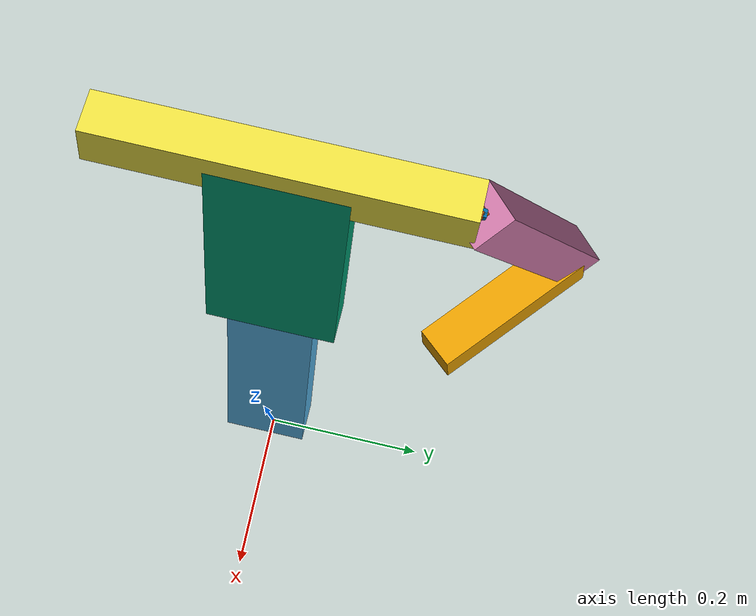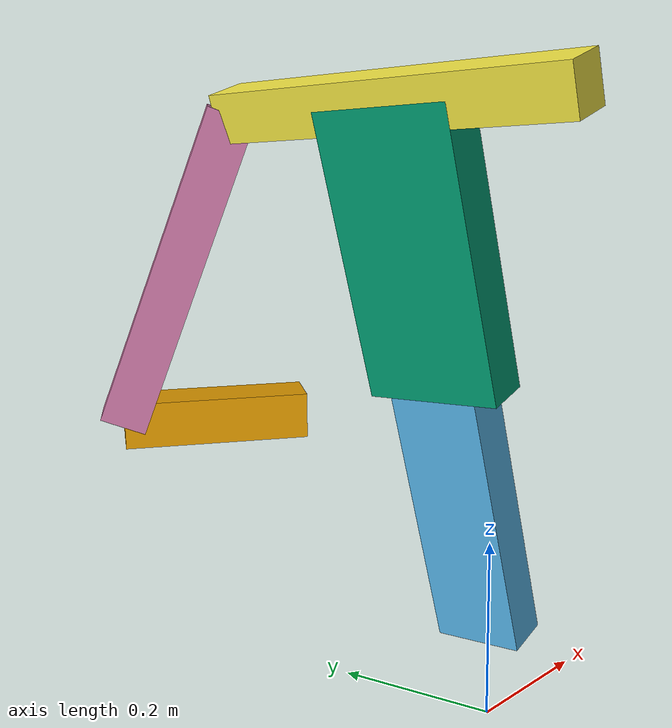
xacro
<?xml version="1.0" ?>

<robot name="myboat"  xmlns:xacro="http://www.ros.org/wiki/xacro">

<gazebo>
  <plugin name="gazebo_ros_control" filename="libgazebo_ros_control.so">
    <robotNamespace>/boot</robotNamespace>
    <robotSimType>gazebo_ros_control/DefaultRobotHWSim</robotSimType>
  </plugin>

</gazebo>

<link name="world"/>

<joint name="hip2" type="revolute">
  <parent link="world"/>
  <child link="back_low"/>
  <origin rpy="0  -${pi/2+0.34} 0.0" xyz="0.0 0.0   0.1"/>
  <dynamics damping="0.5" friction="0.1"/>
  <axis xyz="0 1 0"/>
  <limit effort="100.0" lower="-1.0" upper="1.0" velocity="1.0"/>
</joint>

<link name="back_low">
  <inertial>
    <mass value="10.0"/>
    <origin rpy="0 0 0" xyz="0.15 0.0 0.0"/>
    <inertia ixx="0.01" ixy="0" ixz="0" iyy="0.077" iyz="0" izz="0.083"/>
  </inertial>
  <visual>
    <origin rpy="0 0 0" xyz="0.15 0.0   0.0"/>
    <geometry>
      <box size="0.3 0.1 0.05"/>
    </geometry>
  </visual>
</link>

<joint name="back_lh" type="fixed">
  <parent link="back_low"/>
  <child link="back_high"/>
  <origin rpy="0  0.0 0.0" xyz="0.3 0.0   0.0"/>
</joint>

<link name="back_high">
  <inertial>
    <mass value="10.0"/>
    <origin rpy="0 0 0" xyz="0.15 0.0 0.0"/>
    <inertia ixx="0.02" ixy="0" ixz="0" iyy="0.077" iyz="0" izz="0.094"/>
  </inertial>
  <visual>
    <origin rpy="0 0 0" xyz="0.15 0.0   0.0"/>
    <geometry>
      <box size="0.3 0.15 0.05"/>
    </geometry>
  </visual>
</link>

<joint name="shoulder" type="fixed">
  <parent link="back_high"/>
  <child link="shoulder_link"/>
  <origin rpy="0  0.0 0.0" xyz="0.3 0.0   0.0"/>
</joint>

<link name="shoulder_link">
  <inertial>
    <mass value="1.0"/>
    <origin rpy="0 0 0" xyz="0.0 0.0 0.0"/>
    <inertia ixx="0.013" ixy="0" ixz="0" iyy="0.0004" iyz="0" izz="0.013"/>
  </inertial>
  <visual>
    <origin rpy="0 0 0" xyz="0.0 0.0   0.0"/>
    <geometry>
      <box size="0.05 0.4 0.05"/>
    </geometry>
  </visual>
</link>

<!-- 3D joint left shoulder -->
<joint name="shoulder_l" type="revolute" >
  <parent link="shoulder_link" />
  <child link="left_shoulder_xx_link" />
  <origin rpy="0.0 0.0 0.13" xyz="0.0 0.2   0.0"/>
  <axis xyz="0 0 1" />
  <dynamics damping="0.5"  friction="0.1"/>
  <limit effort="100.0" lower="-0.5" upper="0.5" velocity="1.0"/>
</joint>
<link name="left_shoulder_xx_link">
  <inertial>
    <mass value="0.01"/>
    <origin rpy="0 0 0" xyz="0 0.0 0.0"/>
    <inertia ixx="0.000000167" ixy="0" ixz="0" iyy="0.000000167" iyz="0" izz="0.000000167"/>
  </inertial>
  <visual>
    <origin rpy="0 0 0" xyz="0.0 0.0 0.0"/>
    <geometry>
      <box size="0.01 0.01 0.01"/>
    </geometry>
  </visual>
</link>
<joint name="shoulder_iets" type="revolute" >
  <parent link="left_shoulder_xx_link" />
  <child link="left_shoulder_psi_link" />
  <origin rpy="-0.803 0.0 0.0" xyz="0.0 0.0   0.0"/>
  <axis xyz="1 0 0" />
  <dynamics damping="0.5" friction="0.1" />
  <limit effort="100.0" lower="-0.5" upper="0.5" velocity="1.0"/>
</joint>
<link name="left_shoulder_psi_link">
  <inertial>
    <mass value="0.01"/>
    <origin rpy="0 0 0" xyz="0 0.0 0.0"/>
    <inertia ixx="0.000000167" ixy="0" ixz="0" iyy="0.000000167" iyz="0" izz="0.000000167"/>
  </inertial>
  <visual>
    <origin rpy="0 0 0" xyz="0.0 0.0 0.0"/>
    <geometry>
      <box size="0.01 0.01 0.01"/>
    </geometry>
  </visual>
</link>
<joint name="shoulder_theta_l" type="revolute" >
  <parent link="left_shoulder_psi_link"/>
  <child link="arm_l_upper"/>
  <origin rpy="0 0.68 0" xyz="0 0.0 0.0"/>
  <axis xyz="0 1 0" />
  <dynamics damping="0.5" friction="0.1" />
  <limit effort="100.0" lower="-0.5" upper="0.5" velocity="1.0"/>
</joint>

<link name="arm_l_upper">
  <inertial>
    <mass value="1.0"/>
    <origin rpy="0 0 0" xyz="-0.175 0.0 0.0"/>
    <inertia ixx="0.004" ixy="0" ixz="0" iyy="0.01" iyz="0" izz="0.01"/>
  </inertial>
  <visual>
    <origin rpy="0 0 0" xyz="-0.175 0.0   0.0"/>
    <geometry>
      <box size="0.35 0.05 0.05"/>
    </geometry>
  </visual>
</link>

<!-- 2D joint left elbow -->
<joint name="LElbowTheta" type="fixed" >
  <parent link="arm_l_upper"/>
  <child link="left_elbow_psi_link"/>
    <origin rpy="0.0 -1.94  0.0" xyz="-0.35 0.0  0.0"/>
</joint>
<link name="left_elbow_psi_link">
  <inertial>
    <mass value="0.01"/>
    <origin rpy="0 0 0" xyz="0 0.0 0.0"/>
    <inertia ixx="0.000000167" ixy="0" ixz="0" iyy="0.000000167" iyz="0" izz="0.000000167"/>
  </inertial>
  <visual>
    <origin rpy="0 0 0" xyz="0.0 0.0 0.0"/>
    <geometry>
      <box size="0.01 0.01 0.01"/>
    </geometry>
  </visual>
</link>
<joint name="elbow_left" type="fixed">
  <parent link="left_elbow_psi_link"/>
  <child link="arm_l_lower_1"/>
  <origin rpy="0 0 -0.09" xyz="0 0.0 0.0"/>
</joint>

<!-- lower arm in two to create a kinematic loop in gazebo -->
<link name="arm_l_lower_1">
  <inertial>
    <mass value="1.0"/>
    <origin rpy="0 0 0" xyz="-0.1 0.0 0.0"/>
    <inertia ixx="0.0004" ixy="0" ixz="0" iyy="0.0035" iyz="0" izz="0.0035"/>
  </inertial>
  <visual>
    <origin rpy="0 0 0" xyz="-0.1 0.0   0.0"/>
    <geometry>
      <box size="0.20 0.05 0.05"/>
    </geometry>
  </visual>
</link>

<transmission name="tran1">
  <type>transmission_interface/SimpleTransmission</type>
  <joint name="hip2">
    <hardwareInterface>hardware_interface/EffortJointInterface</hardwareInterface>
  </joint>
  <actuator name="motor1">
    <mechanicalReduction>1</mechanicalReduction>
  </actuator>
</transmission>

<transmission name="tran2">
  <type>transmission_interface/SimpleTransmission</type>
  <joint name="shoulder_l">
    <hardwareInterface>hardware_interface/EffortJointInterface</hardwareInterface>
  </joint>
  <actuator name="motor2">
    <mechanicalReduction>1</mechanicalReduction>
  </actuator>
</transmission>

<transmission name="tran3">
  <type>transmission_interface/SimpleTransmission</type>
  <joint name="shoulder_theta_l">
    <hardwareInterface>hardware_interface/EffortJointInterface</hardwareInterface>
  </joint>
  <actuator name="motor3">
    <mechanicalReduction>1</mechanicalReduction>
  </actuator>
</transmission>

<transmission name="tran4">
  <type>transmission_interface/SimpleTransmission</type>
  <joint name="shoulder_iets">
    <hardwareInterface>hardware_interface/EffortJointInterface</hardwareInterface>
  </joint>
  <actuator name="motor4">
    <mechanicalReduction>1</mechanicalReduction>
  </actuator>
</transmission>

</robot>
